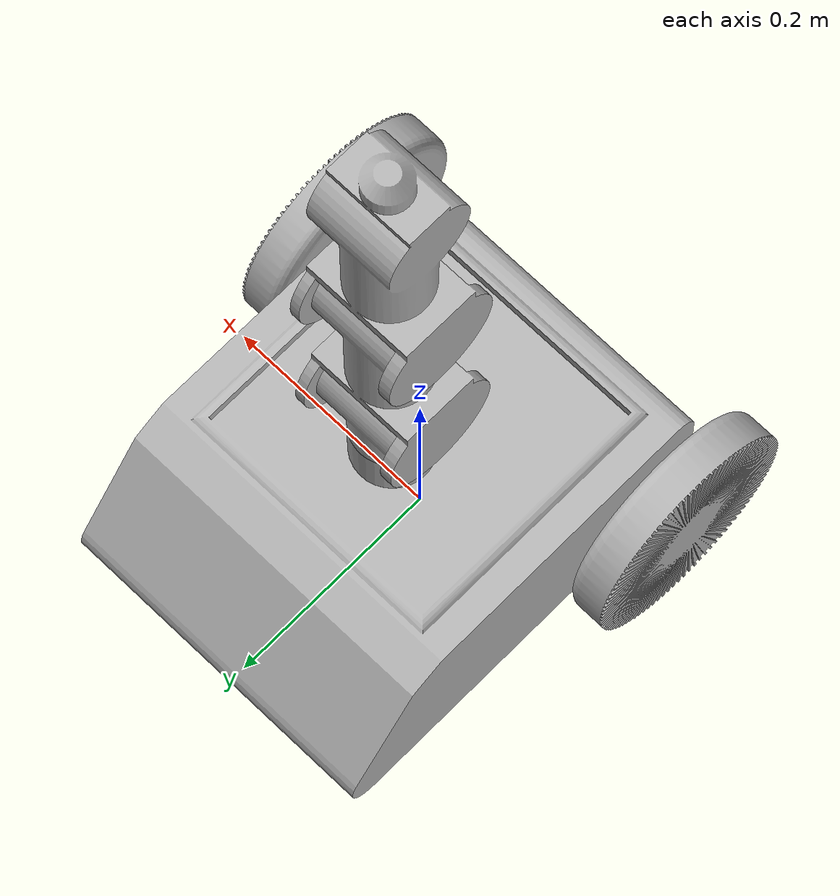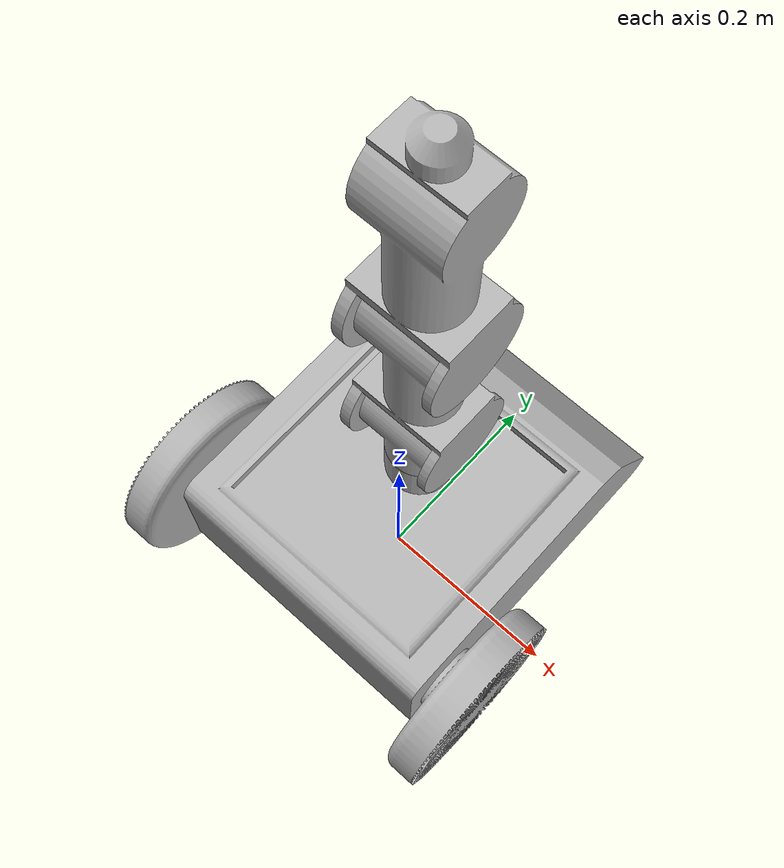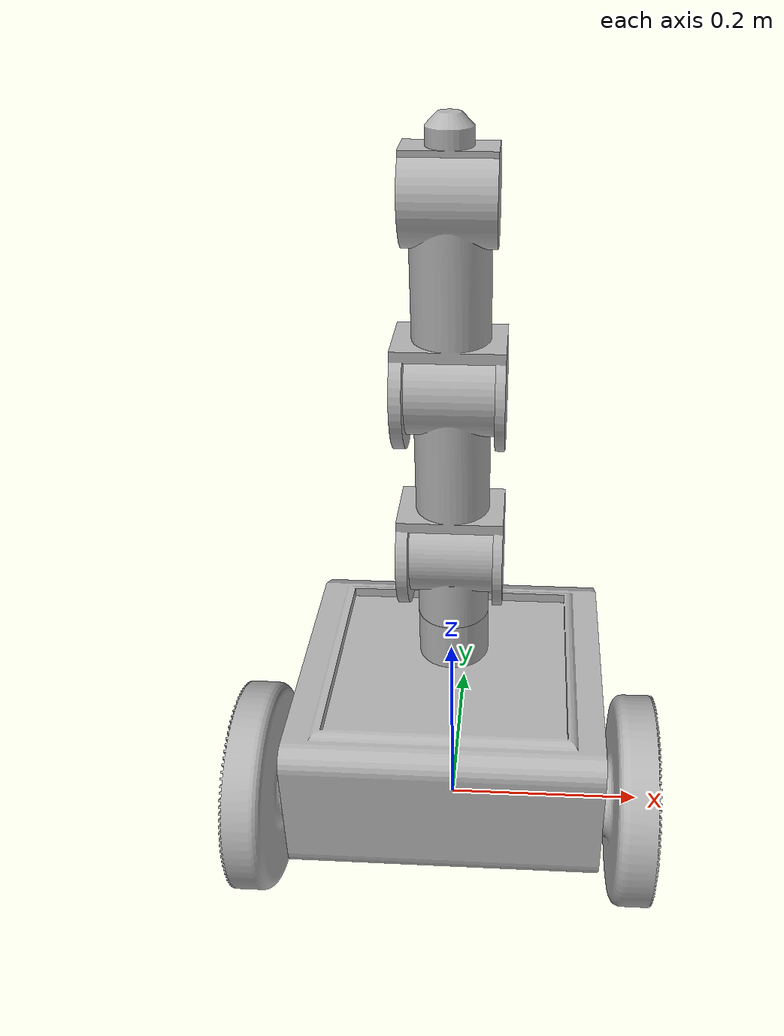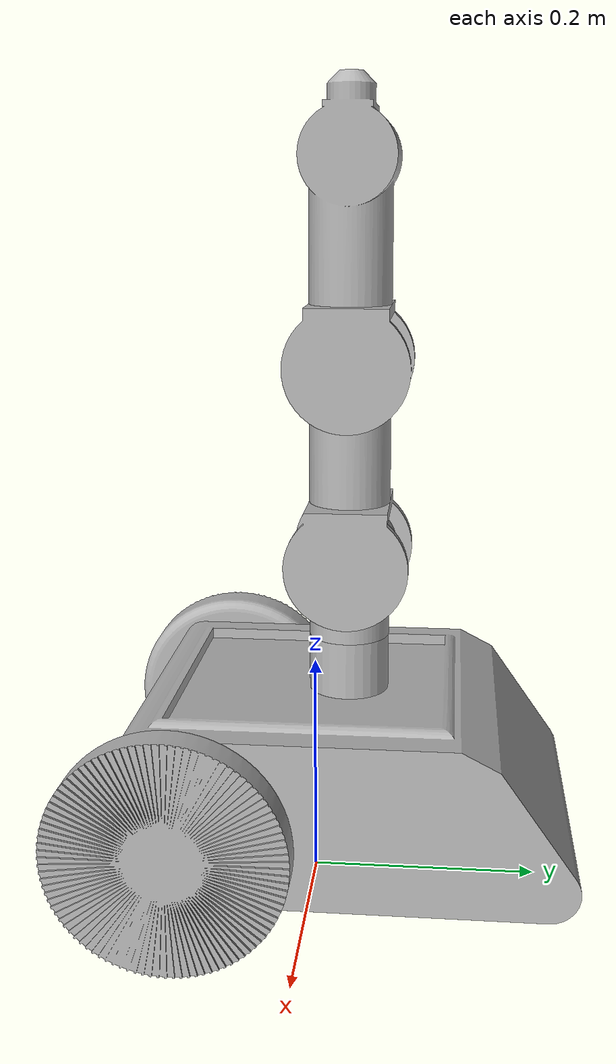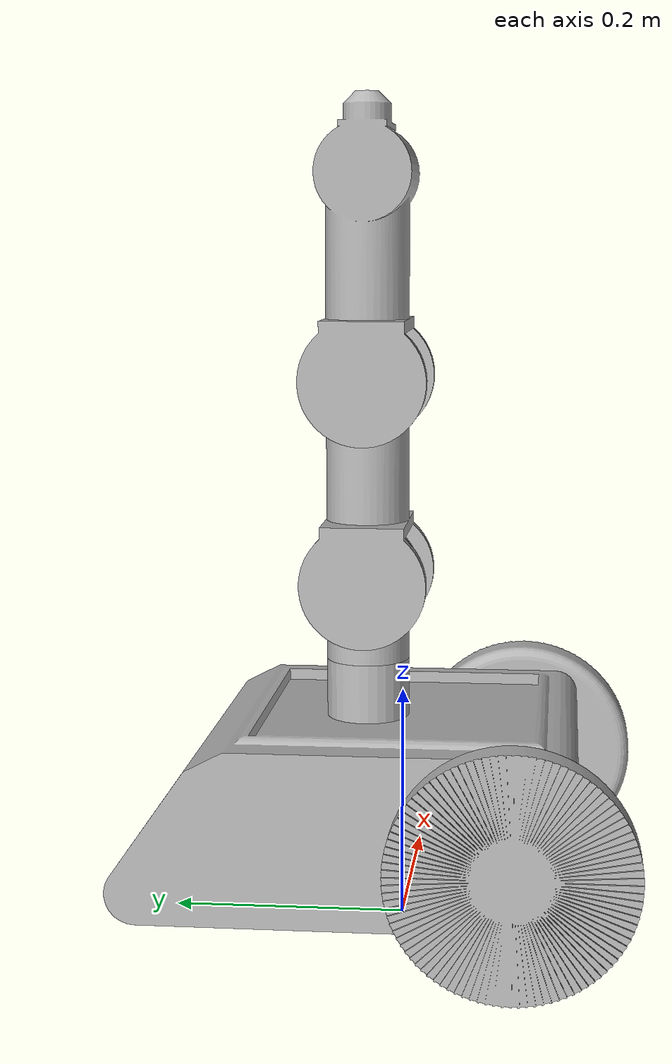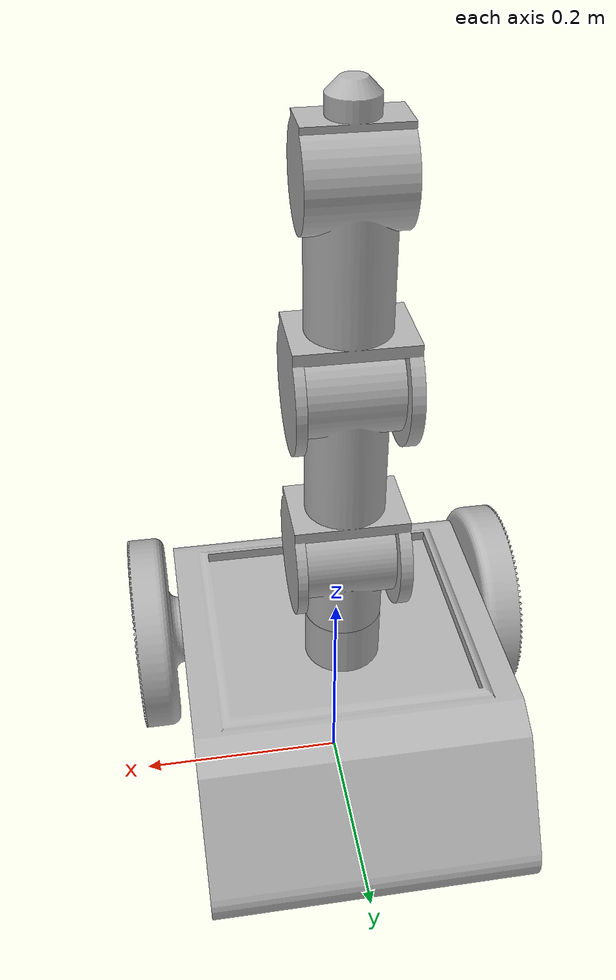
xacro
<?xml version="1.0" ?>
<robot name="ddrobotg1" xmlns:xacro="http://www.ros.org/wiki/xacro">

<xacro:include filename="$(find ddrobotg1_description)/urdf/materials.xacro" />
<xacro:include filename="$(find ddrobotg1_description)/urdf/ddrobotg1.trans" />
<xacro:include filename="$(find ddrobotg1_description)/urdf/ddrobotg1.gazebo" />
<link name="base_link">
  <inertial>
    <origin xyz="6.638763208476852e-15 0.029451921271881197 0.10748178181204981" rpy="0 0 0"/>
    <mass value="114.13453869619016"/>
    <inertia ixx="1.353494" iyy="1.02946" izz="1.97153" ixy="-0.0" iyz="0.063684" ixz="0.0"/>
  </inertial>
  <visual>
    <origin xyz="0 0 0" rpy="0 0 0"/>
    <geometry>
      <mesh filename="package://ddrobotg1_description/meshes/base_link.stl" scale="0.001 0.001 0.001"/>
    </geometry>
    <material name="silver"/>
  </visual>
  <collision>
    <origin xyz="0 0 0" rpy="0 0 0"/>
    <geometry>
      <mesh filename="package://ddrobotg1_description/meshes/base_link.stl" scale="0.001 0.001 0.001"/>
    </geometry>
  </collision>
</link>

<link name="rightwheel_1">
  <inertial>
    <origin xyz="0.07787692493459158 9.71445146547012e-17 1.3877787807814457e-17" rpy="0 0 0"/>
    <mass value="10.94621356233882"/>
    <inertia ixx="0.044556" iyy="0.028919" izz="0.028919" ixy="0.0" iyz="0.0" ixz="0.0"/>
  </inertial>
  <visual>
    <origin xyz="-0.09 0.1 -0.1005" rpy="0 0 0"/>
    <geometry>
      <mesh filename="package://ddrobotg1_description/meshes/rightwheel_1.stl" scale="0.001 0.001 0.001"/>
    </geometry>
    <material name="silver"/>
  </visual>
  <collision>
    <origin xyz="-0.09 0.1 -0.1005" rpy="0 0 0"/>
    <geometry>
      <mesh filename="package://ddrobotg1_description/meshes/rightwheel_1.stl" scale="0.001 0.001 0.001"/>
    </geometry>
  </collision>
</link>

<link name="leftwheel_1">
  <inertial>
    <origin xyz="-0.0778769249345917 2.220446049250313e-16 1.3877787807814457e-17" rpy="0 0 0"/>
    <mass value="10.94621356233882"/>
    <inertia ixx="0.044556" iyy="0.028919" izz="0.028919" ixy="0.0" iyz="-0.0" ixz="0.0"/>
  </inertial>
  <visual>
    <origin xyz="0.09 0.1 -0.1005" rpy="0 0 0"/>
    <geometry>
      <mesh filename="package://ddrobotg1_description/meshes/leftwheel_1.stl" scale="0.001 0.001 0.001"/>
    </geometry>
    <material name="silver"/>
  </visual>
  <collision>
    <origin xyz="0.09 0.1 -0.1005" rpy="0 0 0"/>
    <geometry>
      <mesh filename="package://ddrobotg1_description/meshes/leftwheel_1.stl" scale="0.001 0.001 0.001"/>
    </geometry>
  </collision>
</link>

<link name="link0_1">
  <inertial>
    <origin xyz="3.345359390145037e-08 5.3256621126984705e-09 0.05701141699415099" rpy="0 0 0"/>
    <mass value="4.1939217033022675"/>
    <inertia ixx="0.005154" iyy="0.005517" izz="0.00361" ixy="-0.0" iyz="0.0" ixz="0.0"/>
  </inertial>
  <visual>
    <origin xyz="-0.0 -0.03 -0.228" rpy="0 0 0"/>
    <geometry>
      <mesh filename="package://ddrobotg1_description/meshes/link0_1.stl" scale="0.001 0.001 0.001"/>
    </geometry>
    <material name="silver"/>
  </visual>
  <collision>
    <origin xyz="-0.0 -0.03 -0.228" rpy="0 0 0"/>
    <geometry>
      <mesh filename="package://ddrobotg1_description/meshes/link0_1.stl" scale="0.001 0.001 0.001"/>
    </geometry>
  </collision>
</link>

<link name="link1_1">
  <inertial>
    <origin xyz="0.03871424936086253 3.6361841940224515e-09 0.10886342189476406" rpy="0 0 0"/>
    <mass value="5.691431731344422"/>
    <inertia ixx="0.035432" iyy="0.037716" izz="0.007933" ixy="-0.0" iyz="-0.0" ixz="-0.000794"/>
  </inertial>
  <visual>
    <origin xyz="0.04 -0.03 -0.298" rpy="0 0 0"/>
    <geometry>
      <mesh filename="package://ddrobotg1_description/meshes/link1_1.stl" scale="0.001 0.001 0.001"/>
    </geometry>
    <material name="silver"/>
  </visual>
  <collision>
    <origin xyz="0.04 -0.03 -0.298" rpy="0 0 0"/>
    <geometry>
      <mesh filename="package://ddrobotg1_description/meshes/link1_1.stl" scale="0.001 0.001 0.001"/>
    </geometry>
  </collision>
</link>

<link name="link2_1">
  <inertial>
    <origin xyz="0.038674023189355866 -3.4630161481474797e-09 0.11369047169176505" rpy="0 0 0"/>
    <mass value="5.955375418510712"/>
    <inertia ixx="0.03847" iyy="0.040773" izz="0.008014" ixy="0.0" iyz="0.0" ixz="-0.000895"/>
  </inertial>
  <visual>
    <origin xyz="0.04 -0.03 -0.467164" rpy="0 0 0"/>
    <geometry>
      <mesh filename="package://ddrobotg1_description/meshes/link2_1.stl" scale="0.001 0.001 0.001"/>
    </geometry>
    <material name="silver"/>
  </visual>
  <collision>
    <origin xyz="0.04 -0.03 -0.467164" rpy="0 0 0"/>
    <geometry>
      <mesh filename="package://ddrobotg1_description/meshes/link2_1.stl" scale="0.001 0.001 0.001"/>
    </geometry>
  </collision>
</link>

<joint name="Rev1" type="continuous">
  <origin xyz="0.09 -0.1 0.1005" rpy="0 0 0"/>
  <parent link="base_link"/>
  <child link="rightwheel_1"/>
  <axis xyz="-1.0 -0.0 -0.0"/>
</joint>

<joint name="Rev3" type="continuous">
  <origin xyz="-0.09 -0.1 0.1005" rpy="0 0 0"/>
  <parent link="base_link"/>
  <child link="leftwheel_1"/>
  <axis xyz="-1.0 0.0 0.0"/>
</joint>

<joint name="Rev4" type="continuous">
  <origin xyz="0.0 0.03 0.228" rpy="0 0 0"/>
  <parent link="base_link"/>
  <child link="link0_1"/>
  <axis xyz="0.0 -0.0 1.0"/>
</joint>

<joint name="Rev5" type="revolute">
  <origin xyz="-0.04 0.0 0.07" rpy="0 0 0"/>
  <parent link="link0_1"/>
  <child link="link1_1"/>
  <axis xyz="-1.0 0.0 0.0"/>
  <limit upper="1.919862" lower="-1.919862" effort="100" velocity="100"/>
</joint>

<joint name="Rev6" type="revolute">
  <origin xyz="0.0 0.0 0.169164" rpy="0 0 0"/>
  <parent link="link1_1"/>
  <child link="link2_1"/>
  <axis xyz="-1.0 0.0 0.0"/>
  <limit upper="1.919862" lower="-1.919862" effort="100" velocity="100"/>
</joint>

</robot>

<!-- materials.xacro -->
<robot name="ddrobotg1" xmlns:xacro="http://www.ros.org/wiki/xacro" >

<material name="silver">
  <color rgba="0.700 0.700 0.700 1.000"/>
</material>

</robot>

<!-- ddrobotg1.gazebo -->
<robot name="ddrobotg1" xmlns:xacro="http://www.ros.org/wiki/xacro" >

<xacro:property name="body_color" value="Gazebo/White" />
<xacro:property name="wheel_color" value="Gazebo/Grey" />
<xacro:property name="arm_color" value="Gazebo/White" />

<gazebo>
  <plugin name="gazebo_ros_control" filename="libgazebo_ros_control.so">
      <robotNamespace>/ddrobotg1</robotNamespace>
      <robotSimType>gazebo_ros_control/DefaultRobotHWSim</robotSimType>
    </plugin>
</gazebo>

<gazebo reference="base_link">
  <material>${body_color}</material>
  <mu1>0.2</mu1>
  <mu2>0.2</mu2>
  <selfCollide>true</selfCollide>
  <gravity>true</gravity>
</gazebo>

<gazebo reference="rightwheel_1">
  <material>${wheel_color}</material>
  <mu1>1500</mu1>
  <mu2>1500</mu2>
  <selfCollide>true</selfCollide>
</gazebo>

<gazebo reference="leftwheel_1">
  <material>${wheel_color}</material>
  <mu1>1500</mu1>
  <mu2>1500</mu2>
  <selfCollide>true</selfCollide>
</gazebo>

<gazebo reference="link0_1">
  <material>${arm_color}</material>
  <mu1>0.2</mu1>
  <mu2>0.2</mu2>
  <selfCollide>true</selfCollide>
</gazebo>

<gazebo reference="link1_1">
  <material>${arm_color}</material>
  <mu1>0.2</mu1>
  <mu2>0.2</mu2>
  <selfCollide>true</selfCollide>
</gazebo>

<gazebo reference="link2_1">
  <material>${arm_color}</material>
  <mu1>0.2</mu1>
  <mu2>0.2</mu2>
  <selfCollide>true</selfCollide>
</gazebo>

<gazebo>
  <plugin name="differential_drive_controller" filename="libgazebo_ros_diff_drive.so">

    <!-- Plugin update rate in Hz -->
    <updateRate>100</updateRate>

    <!-- Name of left joint, defaults to `left_joint` -->
    <leftJoint>Rev3</leftJoint>

    <!-- Name of right joint, defaults to `right_joint` -->
    <rightJoint>Rev1</rightJoint>

    <!-- The distance from the center of one wheel to the other, in meters, defaults to 0.34 m -->

    <!-- Diameter of the wheels, in meters, defaults to 0.15 m -->

    <!-- Wheel acceleration, in rad/s^2, defaults to 0.0 rad/s^2 -->
    <wheelAcceleration>1.0</wheelAcceleration>

    <!-- Maximum torque which the wheels can produce, in Nm, defaults to 5 Nm -->
    <wheelTorque>20</wheelTorque>

    <!-- Topic to receive geometry_msgs/Twist message commands, defaults to `cmd_vel` -->
    <commandTopic>cmd_vel</commandTopic>

    <!-- Topic to publish nav_msgs/Odometry messages, defaults to `odom` -->
    <odometryTopic>odom</odometryTopic>

    <!-- Odometry frame, defaults to `odom` -->
    <odometryFrame>odom</odometryFrame>

    <!-- Robot frame to calculate odometry from, defaults to `base_footprint` -->
    <robotBaseFrame>base_link</robotBaseFrame>

    <!-- Odometry source, 0 for ENCODER, 1 for WORLD, defaults to WORLD -->
    <odometrySource>1</odometrySource>

    <!-- Set to true to publish transforms for the wheel links, defaults to false -->
    <publishWheelTF>true</publishWheelTF>

    <!-- Set to true to publish transforms for the odometry, defaults to true -->
    <publishOdom>true</publishOdom>

    <!-- Set to true to publish sensor_msgs/JointState on /joint_states for the wheel joints, defaults to false -->
    <publishWheelJointState>true</publishWheelJointState>

    <!-- Set to true to swap right and left wheels, defaults to true -->
    <legacyMode>false</legacyMode>
  </plugin>
</gazebo>

</robot>
